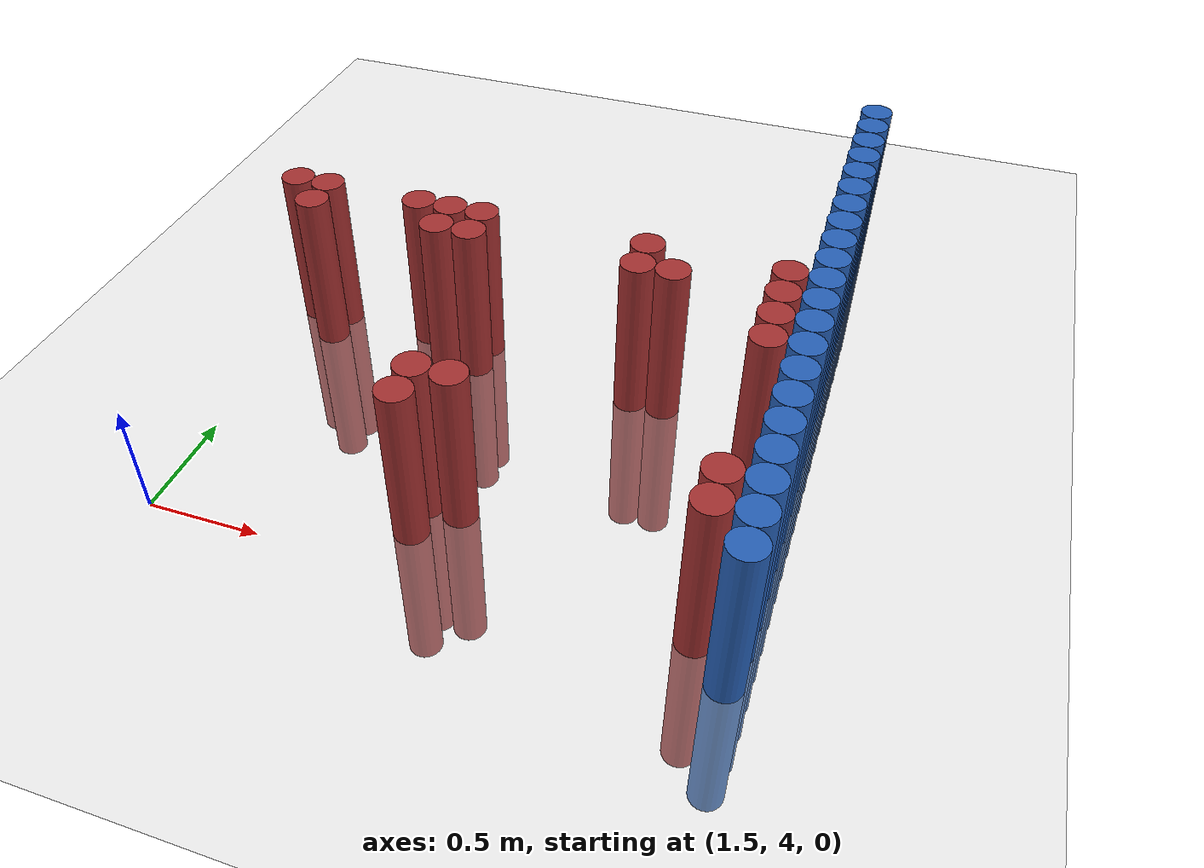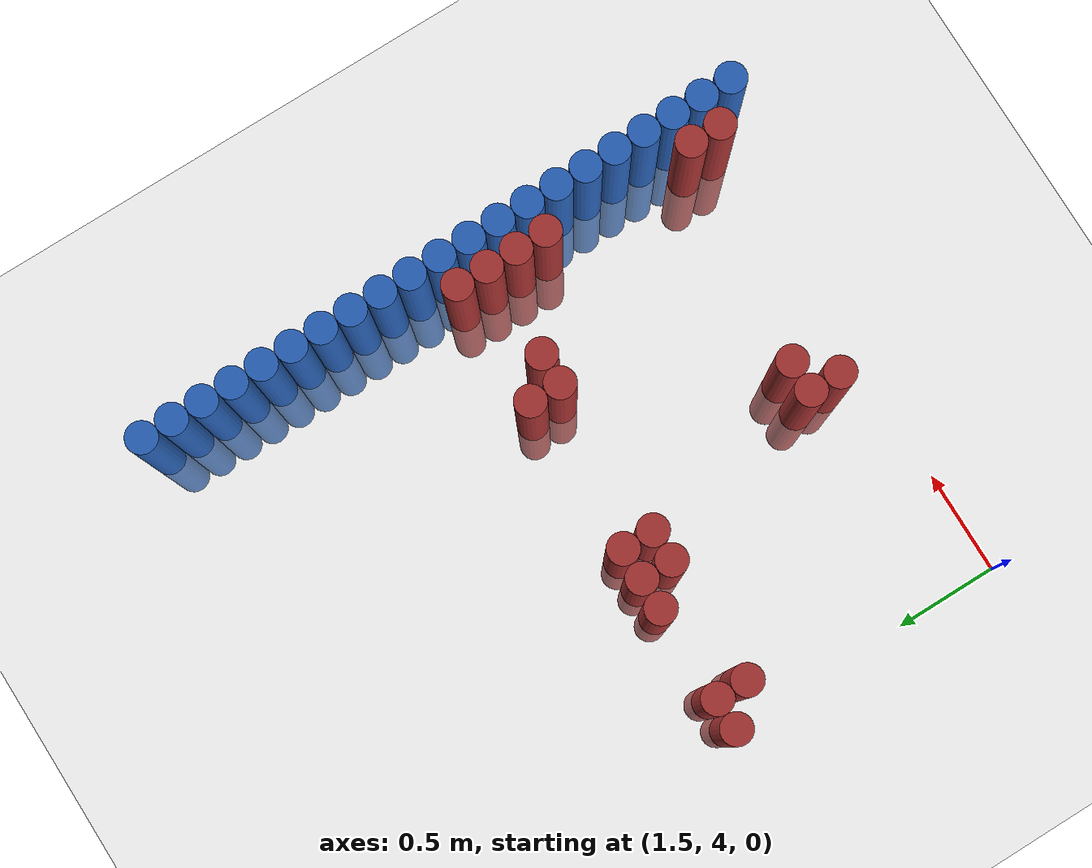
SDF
<sdf version="1.6">
 <world name="default">
  <model name="ground_plane">
   <static>1</static>
   <link name="link">
    <collision name="collision">
     <geometry><plane><normal>0 0 1</normal><size>100 100</size></plane></geometry>
     <surface><friction><ode><mu>100</mu><mu2>50</mu2></ode></friction></surface>
    </collision>
    <visual name="visual">
     <cast_shadows>0</cast_shadows>
     <geometry><plane><normal>0 0 1</normal><size>100 100</size></plane></geometry>
     <material>
      <script><uri>file://media/materials/scripts/gazebo.material</uri><name>Gazebo/Grey</name></script>
     </material>
    </visual>
   </link>
  </model>
  <model name="unit_cylinder_168">
   <static>1</static>
   <pose>3.925000 4.075000 0.000000 0.000000 0.000000 0.000000</pose>
   <link name="link">
    <inertial>
     <mass>1</mass>
     <inertia><ixx>0.145833</ixx><ixy>0</ixy><ixz>0</ixz><iyy>0.145833</iyy><iyz>0</iyz><izz>0.125</izz></inertia>
    </inertial>
    <collision name="collision">
     <geometry><cylinder><radius>0.075000</radius><length>1.5</length></cylinder></geometry>
    </collision>
    <visual name="visual">
     <geometry><cylinder><radius>0.075000</radius><length>1.5</length></cylinder></geometry>
     <material>
      <ambient>0.152000 0.379000 0.720000 1</ambient>
      <diffuse>0.152000 0.379000 0.720000 1</diffuse>
     </material>
     <material>
      <script><name>Gazebo/Grey</name><uri>file://media/materials/scripts/gazebo.material</uri></script>
     </material>
    </visual>
   </link>
  </model>
  <model name="unit_cylinder_170">
   <static>1</static>
   <pose>3.925000 4.225000 0.000000 0.000000 0.000000 0.000000</pose>
   <link name="link">
    <inertial>
     <mass>1</mass>
     <inertia><ixx>0.145833</ixx><ixy>0</ixy><ixz>0</ixz><iyy>0.145833</iyy><iyz>0</iyz><izz>0.125</izz></inertia>
    </inertial>
    <collision name="collision">
     <geometry><cylinder><radius>0.075000</radius><length>1.5</length></cylinder></geometry>
    </collision>
    <visual name="visual">
     <geometry><cylinder><radius>0.075000</radius><length>1.5</length></cylinder></geometry>
     <material>
      <ambient>0.152000 0.379000 0.720000 1</ambient>
      <diffuse>0.152000 0.379000 0.720000 1</diffuse>
     </material>
     <material>
      <script><name>Gazebo/Grey</name><uri>file://media/materials/scripts/gazebo.material</uri></script>
     </material>
    </visual>
   </link>
  </model>
  <model name="unit_cylinder_172">
   <static>1</static>
   <pose>3.925000 4.375000 0.000000 0.000000 0.000000 0.000000</pose>
   <link name="link">
    <inertial>
     <mass>1</mass>
     <inertia><ixx>0.145833</ixx><ixy>0</ixy><ixz>0</ixz><iyy>0.145833</iyy><iyz>0</iyz><izz>0.125</izz></inertia>
    </inertial>
    <collision name="collision">
     <geometry><cylinder><radius>0.075000</radius><length>1.5</length></cylinder></geometry>
    </collision>
    <visual name="visual">
     <geometry><cylinder><radius>0.075000</radius><length>1.5</length></cylinder></geometry>
     <material>
      <ambient>0.152000 0.379000 0.720000 1</ambient>
      <diffuse>0.152000 0.379000 0.720000 1</diffuse>
     </material>
     <material>
      <script><name>Gazebo/Grey</name><uri>file://media/materials/scripts/gazebo.material</uri></script>
     </material>
    </visual>
   </link>
  </model>
  <model name="unit_cylinder_174">
   <static>1</static>
   <pose>3.925000 4.525000 0.000000 0.000000 0.000000 0.000000</pose>
   <link name="link">
    <inertial>
     <mass>1</mass>
     <inertia><ixx>0.145833</ixx><ixy>0</ixy><ixz>0</ixz><iyy>0.145833</iyy><iyz>0</iyz><izz>0.125</izz></inertia>
    </inertial>
    <collision name="collision">
     <geometry><cylinder><radius>0.075000</radius><length>1.5</length></cylinder></geometry>
    </collision>
    <visual name="visual">
     <geometry><cylinder><radius>0.075000</radius><length>1.5</length></cylinder></geometry>
     <material>
      <ambient>0.152000 0.379000 0.720000 1</ambient>
      <diffuse>0.152000 0.379000 0.720000 1</diffuse>
     </material>
     <material>
      <script><name>Gazebo/Grey</name><uri>file://media/materials/scripts/gazebo.material</uri></script>
     </material>
    </visual>
   </link>
  </model>
  <model name="unit_cylinder_176">
   <static>1</static>
   <pose>3.925000 4.675000 0.000000 0.000000 0.000000 0.000000</pose>
   <link name="link">
    <inertial>
     <mass>1</mass>
     <inertia><ixx>0.145833</ixx><ixy>0</ixy><ixz>0</ixz><iyy>0.145833</iyy><iyz>0</iyz><izz>0.125</izz></inertia>
    </inertial>
    <collision name="collision">
     <geometry><cylinder><radius>0.075000</radius><length>1.5</length></cylinder></geometry>
    </collision>
    <visual name="visual">
     <geometry><cylinder><radius>0.075000</radius><length>1.5</length></cylinder></geometry>
     <material>
      <ambient>0.152000 0.379000 0.720000 1</ambient>
      <diffuse>0.152000 0.379000 0.720000 1</diffuse>
     </material>
     <material>
      <script><name>Gazebo/Grey</name><uri>file://media/materials/scripts/gazebo.material</uri></script>
     </material>
    </visual>
   </link>
  </model>
  <model name="unit_cylinder_178">
   <static>1</static>
   <pose>3.925000 4.825000 0.000000 0.000000 0.000000 0.000000</pose>
   <link name="link">
    <inertial>
     <mass>1</mass>
     <inertia><ixx>0.145833</ixx><ixy>0</ixy><ixz>0</ixz><iyy>0.145833</iyy><iyz>0</iyz><izz>0.125</izz></inertia>
    </inertial>
    <collision name="collision">
     <geometry><cylinder><radius>0.075000</radius><length>1.5</length></cylinder></geometry>
    </collision>
    <visual name="visual">
     <geometry><cylinder><radius>0.075000</radius><length>1.5</length></cylinder></geometry>
     <material>
      <ambient>0.152000 0.379000 0.720000 1</ambient>
      <diffuse>0.152000 0.379000 0.720000 1</diffuse>
     </material>
     <material>
      <script><name>Gazebo/Grey</name><uri>file://media/materials/scripts/gazebo.material</uri></script>
     </material>
    </visual>
   </link>
  </model>
  <model name="unit_cylinder_180">
   <static>1</static>
   <pose>3.925000 4.975000 0.000000 0.000000 0.000000 0.000000</pose>
   <link name="link">
    <inertial>
     <mass>1</mass>
     <inertia><ixx>0.145833</ixx><ixy>0</ixy><ixz>0</ixz><iyy>0.145833</iyy><iyz>0</iyz><izz>0.125</izz></inertia>
    </inertial>
    <collision name="collision">
     <geometry><cylinder><radius>0.075000</radius><length>1.5</length></cylinder></geometry>
    </collision>
    <visual name="visual">
     <geometry><cylinder><radius>0.075000</radius><length>1.5</length></cylinder></geometry>
     <material>
      <ambient>0.152000 0.379000 0.720000 1</ambient>
      <diffuse>0.152000 0.379000 0.720000 1</diffuse>
     </material>
     <material>
      <script><name>Gazebo/Grey</name><uri>file://media/materials/scripts/gazebo.material</uri></script>
     </material>
    </visual>
   </link>
  </model>
  <model name="unit_cylinder_182">
   <static>1</static>
   <pose>3.925000 5.125000 0.000000 0.000000 0.000000 0.000000</pose>
   <link name="link">
    <inertial>
     <mass>1</mass>
     <inertia><ixx>0.145833</ixx><ixy>0</ixy><ixz>0</ixz><iyy>0.145833</iyy><iyz>0</iyz><izz>0.125</izz></inertia>
    </inertial>
    <collision name="collision">
     <geometry><cylinder><radius>0.075000</radius><length>1.5</length></cylinder></geometry>
    </collision>
    <visual name="visual">
     <geometry><cylinder><radius>0.075000</radius><length>1.5</length></cylinder></geometry>
     <material>
      <ambient>0.152000 0.379000 0.720000 1</ambient>
      <diffuse>0.152000 0.379000 0.720000 1</diffuse>
     </material>
     <material>
      <script><name>Gazebo/Grey</name><uri>file://media/materials/scripts/gazebo.material</uri></script>
     </material>
    </visual>
   </link>
  </model>
  <model name="unit_cylinder_184">
   <static>1</static>
   <pose>3.925000 5.275000 0.000000 0.000000 0.000000 0.000000</pose>
   <link name="link">
    <inertial>
     <mass>1</mass>
     <inertia><ixx>0.145833</ixx><ixy>0</ixy><ixz>0</ixz><iyy>0.145833</iyy><iyz>0</iyz><izz>0.125</izz></inertia>
    </inertial>
    <collision name="collision">
     <geometry><cylinder><radius>0.075000</radius><length>1.5</length></cylinder></geometry>
    </collision>
    <visual name="visual">
     <geometry><cylinder><radius>0.075000</radius><length>1.5</length></cylinder></geometry>
     <material>
      <ambient>0.152000 0.379000 0.720000 1</ambient>
      <diffuse>0.152000 0.379000 0.720000 1</diffuse>
     </material>
     <material>
      <script><name>Gazebo/Grey</name><uri>file://media/materials/scripts/gazebo.material</uri></script>
     </material>
    </visual>
   </link>
  </model>
  <model name="unit_cylinder_186">
   <static>1</static>
   <pose>3.925000 5.425000 0.000000 0.000000 0.000000 0.000000</pose>
   <link name="link">
    <inertial>
     <mass>1</mass>
     <inertia><ixx>0.145833</ixx><ixy>0</ixy><ixz>0</ixz><iyy>0.145833</iyy><iyz>0</iyz><izz>0.125</izz></inertia>
    </inertial>
    <collision name="collision">
     <geometry><cylinder><radius>0.075000</radius><length>1.5</length></cylinder></geometry>
    </collision>
    <visual name="visual">
     <geometry><cylinder><radius>0.075000</radius><length>1.5</length></cylinder></geometry>
     <material>
      <ambient>0.152000 0.379000 0.720000 1</ambient>
      <diffuse>0.152000 0.379000 0.720000 1</diffuse>
     </material>
     <material>
      <script><name>Gazebo/Grey</name><uri>file://media/materials/scripts/gazebo.material</uri></script>
     </material>
    </visual>
   </link>
  </model>
  <model name="unit_cylinder_188">
   <static>1</static>
   <pose>3.925000 5.575000 0.000000 0.000000 0.000000 0.000000</pose>
   <link name="link">
    <inertial>
     <mass>1</mass>
     <inertia><ixx>0.145833</ixx><ixy>0</ixy><ixz>0</ixz><iyy>0.145833</iyy><iyz>0</iyz><izz>0.125</izz></inertia>
    </inertial>
    <collision name="collision">
     <geometry><cylinder><radius>0.075000</radius><length>1.5</length></cylinder></geometry>
    </collision>
    <visual name="visual">
     <geometry><cylinder><radius>0.075000</radius><length>1.5</length></cylinder></geometry>
     <material>
      <ambient>0.152000 0.379000 0.720000 1</ambient>
      <diffuse>0.152000 0.379000 0.720000 1</diffuse>
     </material>
     <material>
      <script><name>Gazebo/Grey</name><uri>file://media/materials/scripts/gazebo.material</uri></script>
     </material>
    </visual>
   </link>
  </model>
  <model name="unit_cylinder_190">
   <static>1</static>
   <pose>3.925000 5.725000 0.000000 0.000000 0.000000 0.000000</pose>
   <link name="link">
    <inertial>
     <mass>1</mass>
     <inertia><ixx>0.145833</ixx><ixy>0</ixy><ixz>0</ixz><iyy>0.145833</iyy><iyz>0</iyz><izz>0.125</izz></inertia>
    </inertial>
    <collision name="collision">
     <geometry><cylinder><radius>0.075000</radius><length>1.5</length></cylinder></geometry>
    </collision>
    <visual name="visual">
     <geometry><cylinder><radius>0.075000</radius><length>1.5</length></cylinder></geometry>
     <material>
      <ambient>0.152000 0.379000 0.720000 1</ambient>
      <diffuse>0.152000 0.379000 0.720000 1</diffuse>
     </material>
     <material>
      <script><name>Gazebo/Grey</name><uri>file://media/materials/scripts/gazebo.material</uri></script>
     </material>
    </visual>
   </link>
  </model>
  <model name="unit_cylinder_192">
   <static>1</static>
   <pose>3.925000 5.875000 0.000000 0.000000 0.000000 0.000000</pose>
   <link name="link">
    <inertial>
     <mass>1</mass>
     <inertia><ixx>0.145833</ixx><ixy>0</ixy><ixz>0</ixz><iyy>0.145833</iyy><iyz>0</iyz><izz>0.125</izz></inertia>
    </inertial>
    <collision name="collision">
     <geometry><cylinder><radius>0.075000</radius><length>1.5</length></cylinder></geometry>
    </collision>
    <visual name="visual">
     <geometry><cylinder><radius>0.075000</radius><length>1.5</length></cylinder></geometry>
     <material>
      <ambient>0.152000 0.379000 0.720000 1</ambient>
      <diffuse>0.152000 0.379000 0.720000 1</diffuse>
     </material>
     <material>
      <script><name>Gazebo/Grey</name><uri>file://media/materials/scripts/gazebo.material</uri></script>
     </material>
    </visual>
   </link>
  </model>
  <model name="unit_cylinder_194">
   <static>1</static>
   <pose>3.925000 6.025000 0.000000 0.000000 0.000000 0.000000</pose>
   <link name="link">
    <inertial>
     <mass>1</mass>
     <inertia><ixx>0.145833</ixx><ixy>0</ixy><ixz>0</ixz><iyy>0.145833</iyy><iyz>0</iyz><izz>0.125</izz></inertia>
    </inertial>
    <collision name="collision">
     <geometry><cylinder><radius>0.075000</radius><length>1.5</length></cylinder></geometry>
    </collision>
    <visual name="visual">
     <geometry><cylinder><radius>0.075000</radius><length>1.5</length></cylinder></geometry>
     <material>
      <ambient>0.152000 0.379000 0.720000 1</ambient>
      <diffuse>0.152000 0.379000 0.720000 1</diffuse>
     </material>
     <material>
      <script><name>Gazebo/Grey</name><uri>file://media/materials/scripts/gazebo.material</uri></script>
     </material>
    </visual>
   </link>
  </model>
  <model name="unit_cylinder_196">
   <static>1</static>
   <pose>3.925000 6.175000 0.000000 0.000000 0.000000 0.000000</pose>
   <link name="link">
    <inertial>
     <mass>1</mass>
     <inertia><ixx>0.145833</ixx><ixy>0</ixy><ixz>0</ixz><iyy>0.145833</iyy><iyz>0</iyz><izz>0.125</izz></inertia>
    </inertial>
    <collision name="collision">
     <geometry><cylinder><radius>0.075000</radius><length>1.5</length></cylinder></geometry>
    </collision>
    <visual name="visual">
     <geometry><cylinder><radius>0.075000</radius><length>1.5</length></cylinder></geometry>
     <material>
      <ambient>0.152000 0.379000 0.720000 1</ambient>
      <diffuse>0.152000 0.379000 0.720000 1</diffuse>
     </material>
     <material>
      <script><name>Gazebo/Grey</name><uri>file://media/materials/scripts/gazebo.material</uri></script>
     </material>
    </visual>
   </link>
  </model>
  <model name="unit_cylinder_198">
   <static>1</static>
   <pose>3.925000 6.325000 0.000000 0.000000 0.000000 0.000000</pose>
   <link name="link">
    <inertial>
     <mass>1</mass>
     <inertia><ixx>0.145833</ixx><ixy>0</ixy><ixz>0</ixz><iyy>0.145833</iyy><iyz>0</iyz><izz>0.125</izz></inertia>
    </inertial>
    <collision name="collision">
     <geometry><cylinder><radius>0.075000</radius><length>1.5</length></cylinder></geometry>
    </collision>
    <visual name="visual">
     <geometry><cylinder><radius>0.075000</radius><length>1.5</length></cylinder></geometry>
     <material>
      <ambient>0.152000 0.379000 0.720000 1</ambient>
      <diffuse>0.152000 0.379000 0.720000 1</diffuse>
     </material>
     <material>
      <script><name>Gazebo/Grey</name><uri>file://media/materials/scripts/gazebo.material</uri></script>
     </material>
    </visual>
   </link>
  </model>
  <model name="unit_cylinder_200">
   <static>1</static>
   <pose>3.925000 6.475000 0.000000 0.000000 0.000000 0.000000</pose>
   <link name="link">
    <inertial>
     <mass>1</mass>
     <inertia><ixx>0.145833</ixx><ixy>0</ixy><ixz>0</ixz><iyy>0.145833</iyy><iyz>0</iyz><izz>0.125</izz></inertia>
    </inertial>
    <collision name="collision">
     <geometry><cylinder><radius>0.075000</radius><length>1.5</length></cylinder></geometry>
    </collision>
    <visual name="visual">
     <geometry><cylinder><radius>0.075000</radius><length>1.5</length></cylinder></geometry>
     <material>
      <ambient>0.152000 0.379000 0.720000 1</ambient>
      <diffuse>0.152000 0.379000 0.720000 1</diffuse>
     </material>
     <material>
      <script><name>Gazebo/Grey</name><uri>file://media/materials/scripts/gazebo.material</uri></script>
     </material>
    </visual>
   </link>
  </model>
  <model name="unit_cylinder_202">
   <static>1</static>
   <pose>3.925000 6.625000 0.000000 0.000000 0.000000 0.000000</pose>
   <link name="link">
    <inertial>
     <mass>1</mass>
     <inertia><ixx>0.145833</ixx><ixy>0</ixy><ixz>0</ixz><iyy>0.145833</iyy><iyz>0</iyz><izz>0.125</izz></inertia>
    </inertial>
    <collision name="collision">
     <geometry><cylinder><radius>0.075000</radius><length>1.5</length></cylinder></geometry>
    </collision>
    <visual name="visual">
     <geometry><cylinder><radius>0.075000</radius><length>1.5</length></cylinder></geometry>
     <material>
      <ambient>0.152000 0.379000 0.720000 1</ambient>
      <diffuse>0.152000 0.379000 0.720000 1</diffuse>
     </material>
     <material>
      <script><name>Gazebo/Grey</name><uri>file://media/materials/scripts/gazebo.material</uri></script>
     </material>
    </visual>
   </link>
  </model>
  <model name="unit_cylinder_204">
   <static>1</static>
   <pose>3.925000 6.775000 0.000000 0.000000 0.000000 0.000000</pose>
   <link name="link">
    <inertial>
     <mass>1</mass>
     <inertia><ixx>0.145833</ixx><ixy>0</ixy><ixz>0</ixz><iyy>0.145833</iyy><iyz>0</iyz><izz>0.125</izz></inertia>
    </inertial>
    <collision name="collision">
     <geometry><cylinder><radius>0.075000</radius><length>1.5</length></cylinder></geometry>
    </collision>
    <visual name="visual">
     <geometry><cylinder><radius>0.075000</radius><length>1.5</length></cylinder></geometry>
     <material>
      <ambient>0.152000 0.379000 0.720000 1</ambient>
      <diffuse>0.152000 0.379000 0.720000 1</diffuse>
     </material>
     <material>
      <script><name>Gazebo/Grey</name><uri>file://media/materials/scripts/gazebo.material</uri></script>
     </material>
    </visual>
   </link>
  </model>
  <model name="unit_cylinder_206">
   <static>1</static>
   <pose>3.925000 6.925000 0.000000 0.000000 0.000000 0.000000</pose>
   <link name="link">
    <inertial>
     <mass>1</mass>
     <inertia><ixx>0.145833</ixx><ixy>0</ixy><ixz>0</ixz><iyy>0.145833</iyy><iyz>0</iyz><izz>0.125</izz></inertia>
    </inertial>
    <collision name="collision">
     <geometry><cylinder><radius>0.075000</radius><length>1.5</length></cylinder></geometry>
    </collision>
    <visual name="visual">
     <geometry><cylinder><radius>0.075000</radius><length>1.5</length></cylinder></geometry>
     <material>
      <ambient>0.152000 0.379000 0.720000 1</ambient>
      <diffuse>0.152000 0.379000 0.720000 1</diffuse>
     </material>
     <material>
      <script><name>Gazebo/Grey</name><uri>file://media/materials/scripts/gazebo.material</uri></script>
     </material>
    </visual>
   </link>
  </model>
  <model name="unit_cylinder_479">
   <static>1</static>
   <pose>1.525000 5.425000 0.000000 0.000000 0.000000 0.000000</pose>
   <link name="link">
    <inertial>
     <mass>1</mass>
     <inertia><ixx>0.145833</ixx><ixy>0</ixy><ixz>0</ixz><iyy>0.145833</iyy><iyz>0</iyz><izz>0.125</izz></inertia>
    </inertial>
    <collision name="collision">
     <geometry><cylinder><radius>0.075000</radius><length>1.5</length></cylinder></geometry>
    </collision>
    <visual name="visual">
     <geometry><cylinder><radius>0.075000</radius><length>1.5</length></cylinder></geometry>
     <material>
      <ambient>0.648000 0.192000 0.192000 1</ambient>
      <diffuse>0.648000 0.192000 0.192000 1</diffuse>
     </material>
     <material>
      <script><name>Gazebo/Grey</name><uri>file://media/materials/scripts/gazebo.material</uri></script>
     </material>
    </visual>
   </link>
  </model>
  <model name="unit_cylinder_480">
   <static>1</static>
   <pose>1.675000 5.275000 0.000000 0.000000 0.000000 0.000000</pose>
   <link name="link">
    <inertial>
     <mass>1</mass>
     <inertia><ixx>0.145833</ixx><ixy>0</ixy><ixz>0</ixz><iyy>0.145833</iyy><iyz>0</iyz><izz>0.125</izz></inertia>
    </inertial>
    <collision name="collision">
     <geometry><cylinder><radius>0.075000</radius><length>1.5</length></cylinder></geometry>
    </collision>
    <visual name="visual">
     <geometry><cylinder><radius>0.075000</radius><length>1.5</length></cylinder></geometry>
     <material>
      <ambient>0.648000 0.192000 0.192000 1</ambient>
      <diffuse>0.648000 0.192000 0.192000 1</diffuse>
     </material>
     <material>
      <script><name>Gazebo/Grey</name><uri>file://media/materials/scripts/gazebo.material</uri></script>
     </material>
    </visual>
   </link>
  </model>
  <model name="unit_cylinder_481">
   <static>1</static>
   <pose>1.675000 5.425000 0.000000 0.000000 0.000000 0.000000</pose>
   <link name="link">
    <inertial>
     <mass>1</mass>
     <inertia><ixx>0.145833</ixx><ixy>0</ixy><ixz>0</ixz><iyy>0.145833</iyy><iyz>0</iyz><izz>0.125</izz></inertia>
    </inertial>
    <collision name="collision">
     <geometry><cylinder><radius>0.075000</radius><length>1.5</length></cylinder></geometry>
    </collision>
    <visual name="visual">
     <geometry><cylinder><radius>0.075000</radius><length>1.5</length></cylinder></geometry>
     <material>
      <ambient>0.648000 0.192000 0.192000 1</ambient>
      <diffuse>0.648000 0.192000 0.192000 1</diffuse>
     </material>
     <material>
      <script><name>Gazebo/Grey</name><uri>file://media/materials/scripts/gazebo.material</uri></script>
     </material>
    </visual>
   </link>
  </model>
  <model name="unit_cylinder_485">
   <static>1</static>
   <pose>2.125000 5.425000 0.000000 0.000000 0.000000 0.000000</pose>
   <link name="link">
    <inertial>
     <mass>1</mass>
     <inertia><ixx>0.145833</ixx><ixy>0</ixy><ixz>0</ixz><iyy>0.145833</iyy><iyz>0</iyz><izz>0.125</izz></inertia>
    </inertial>
    <collision name="collision">
     <geometry><cylinder><radius>0.075000</radius><length>1.5</length></cylinder></geometry>
    </collision>
    <visual name="visual">
     <geometry><cylinder><radius>0.075000</radius><length>1.5</length></cylinder></geometry>
     <material>
      <ambient>0.648000 0.192000 0.192000 1</ambient>
      <diffuse>0.648000 0.192000 0.192000 1</diffuse>
     </material>
     <material>
      <script><name>Gazebo/Grey</name><uri>file://media/materials/scripts/gazebo.material</uri></script>
     </material>
    </visual>
   </link>
  </model>
  <model name="unit_cylinder_486">
   <static>1</static>
   <pose>2.275000 5.275000 0.000000 0.000000 0.000000 0.000000</pose>
   <link name="link">
    <inertial>
     <mass>1</mass>
     <inertia><ixx>0.145833</ixx><ixy>0</ixy><ixz>0</ixz><iyy>0.145833</iyy><iyz>0</iyz><izz>0.125</izz></inertia>
    </inertial>
    <collision name="collision">
     <geometry><cylinder><radius>0.075000</radius><length>1.5</length></cylinder></geometry>
    </collision>
    <visual name="visual">
     <geometry><cylinder><radius>0.075000</radius><length>1.5</length></cylinder></geometry>
     <material>
      <ambient>0.648000 0.192000 0.192000 1</ambient>
      <diffuse>0.648000 0.192000 0.192000 1</diffuse>
     </material>
     <material>
      <script><name>Gazebo/Grey</name><uri>file://media/materials/scripts/gazebo.material</uri></script>
     </material>
    </visual>
   </link>
  </model>
  <model name="unit_cylinder_487">
   <static>1</static>
   <pose>2.275000 5.425000 0.000000 0.000000 0.000000 0.000000</pose>
   <link name="link">
    <inertial>
     <mass>1</mass>
     <inertia><ixx>0.145833</ixx><ixy>0</ixy><ixz>0</ixz><iyy>0.145833</iyy><iyz>0</iyz><izz>0.125</izz></inertia>
    </inertial>
    <collision name="collision">
     <geometry><cylinder><radius>0.075000</radius><length>1.5</length></cylinder></geometry>
    </collision>
    <visual name="visual">
     <geometry><cylinder><radius>0.075000</radius><length>1.5</length></cylinder></geometry>
     <material>
      <ambient>0.648000 0.192000 0.192000 1</ambient>
      <diffuse>0.648000 0.192000 0.192000 1</diffuse>
     </material>
     <material>
      <script><name>Gazebo/Grey</name><uri>file://media/materials/scripts/gazebo.material</uri></script>
     </material>
    </visual>
   </link>
  </model>
  <model name="unit_cylinder_488">
   <static>1</static>
   <pose>2.425000 5.275000 0.000000 0.000000 0.000000 0.000000</pose>
   <link name="link">
    <inertial>
     <mass>1</mass>
     <inertia><ixx>0.145833</ixx><ixy>0</ixy><ixz>0</ixz><iyy>0.145833</iyy><iyz>0</iyz><izz>0.125</izz></inertia>
    </inertial>
    <collision name="collision">
     <geometry><cylinder><radius>0.075000</radius><length>1.5</length></cylinder></geometry>
    </collision>
    <visual name="visual">
     <geometry><cylinder><radius>0.075000</radius><length>1.5</length></cylinder></geometry>
     <material>
      <ambient>0.648000 0.192000 0.192000 1</ambient>
      <diffuse>0.648000 0.192000 0.192000 1</diffuse>
     </material>
     <material>
      <script><name>Gazebo/Grey</name><uri>file://media/materials/scripts/gazebo.material</uri></script>
     </material>
    </visual>
   </link>
  </model>
  <model name="unit_cylinder_489">
   <static>1</static>
   <pose>2.425000 5.425000 0.000000 0.000000 0.000000 0.000000</pose>
   <link name="link">
    <inertial>
     <mass>1</mass>
     <inertia><ixx>0.145833</ixx><ixy>0</ixy><ixz>0</ixz><iyy>0.145833</iyy><iyz>0</iyz><izz>0.125</izz></inertia>
    </inertial>
    <collision name="collision">
     <geometry><cylinder><radius>0.075000</radius><length>1.5</length></cylinder></geometry>
    </collision>
    <visual name="visual">
     <geometry><cylinder><radius>0.075000</radius><length>1.5</length></cylinder></geometry>
     <material>
      <ambient>0.648000 0.192000 0.192000 1</ambient>
      <diffuse>0.648000 0.192000 0.192000 1</diffuse>
     </material>
     <material>
      <script><name>Gazebo/Grey</name><uri>file://media/materials/scripts/gazebo.material</uri></script>
     </material>
    </visual>
   </link>
  </model>
  <model name="unit_cylinder_492">
   <static>1</static>
   <pose>2.575000 4.225000 0.000000 0.000000 0.000000 0.000000</pose>
   <link name="link">
    <inertial>
     <mass>1</mass>
     <inertia><ixx>0.145833</ixx><ixy>0</ixy><ixz>0</ixz><iyy>0.145833</iyy><iyz>0</iyz><izz>0.125</izz></inertia>
    </inertial>
    <collision name="collision">
     <geometry><cylinder><radius>0.075000</radius><length>1.5</length></cylinder></geometry>
    </collision>
    <visual name="visual">
     <geometry><cylinder><radius>0.075000</radius><length>1.5</length></cylinder></geometry>
     <material>
      <ambient>0.648000 0.192000 0.192000 1</ambient>
      <diffuse>0.648000 0.192000 0.192000 1</diffuse>
     </material>
     <material>
      <script><name>Gazebo/Grey</name><uri>file://media/materials/scripts/gazebo.material</uri></script>
     </material>
    </visual>
   </link>
  </model>
  <model name="unit_cylinder_493">
   <static>1</static>
   <pose>2.575000 4.375000 0.000000 0.000000 0.000000 0.000000</pose>
   <link name="link">
    <inertial>
     <mass>1</mass>
     <inertia><ixx>0.145833</ixx><ixy>0</ixy><ixz>0</ixz><iyy>0.145833</iyy><iyz>0</iyz><izz>0.125</izz></inertia>
    </inertial>
    <collision name="collision">
     <geometry><cylinder><radius>0.075000</radius><length>1.5</length></cylinder></geometry>
    </collision>
    <visual name="visual">
     <geometry><cylinder><radius>0.075000</radius><length>1.5</length></cylinder></geometry>
     <material>
      <ambient>0.648000 0.192000 0.192000 1</ambient>
      <diffuse>0.648000 0.192000 0.192000 1</diffuse>
     </material>
     <material>
      <script><name>Gazebo/Grey</name><uri>file://media/materials/scripts/gazebo.material</uri></script>
     </material>
    </visual>
   </link>
  </model>
  <model name="unit_cylinder_500">
   <static>1</static>
   <pose>2.725000 4.375000 0.000000 0.000000 0.000000 0.000000</pose>
   <link name="link">
    <inertial>
     <mass>1</mass>
     <inertia><ixx>0.145833</ixx><ixy>0</ixy><ixz>0</ixz><iyy>0.145833</iyy><iyz>0</iyz><izz>0.125</izz></inertia>
    </inertial>
    <collision name="collision">
     <geometry><cylinder><radius>0.075000</radius><length>1.5</length></cylinder></geometry>
    </collision>
    <visual name="visual">
     <geometry><cylinder><radius>0.075000</radius><length>1.5</length></cylinder></geometry>
     <material>
      <ambient>0.648000 0.192000 0.192000 1</ambient>
      <diffuse>0.648000 0.192000 0.192000 1</diffuse>
     </material>
     <material>
      <script><name>Gazebo/Grey</name><uri>file://media/materials/scripts/gazebo.material</uri></script>
     </material>
    </visual>
   </link>
  </model>
  <model name="unit_cylinder_508">
   <static>1</static>
   <pose>3.175000 5.275000 0.000000 0.000000 0.000000 0.000000</pose>
   <link name="link">
    <inertial>
     <mass>1</mass>
     <inertia><ixx>0.145833</ixx><ixy>0</ixy><ixz>0</ixz><iyy>0.145833</iyy><iyz>0</iyz><izz>0.125</izz></inertia>
    </inertial>
    <collision name="collision">
     <geometry><cylinder><radius>0.075000</radius><length>1.5</length></cylinder></geometry>
    </collision>
    <visual name="visual">
     <geometry><cylinder><radius>0.075000</radius><length>1.5</length></cylinder></geometry>
     <material>
      <ambient>0.648000 0.192000 0.192000 1</ambient>
      <diffuse>0.648000 0.192000 0.192000 1</diffuse>
     </material>
     <material>
      <script><name>Gazebo/Grey</name><uri>file://media/materials/scripts/gazebo.material</uri></script>
     </material>
    </visual>
   </link>
  </model>
  <model name="unit_cylinder_509">
   <static>1</static>
   <pose>3.175000 5.425000 0.000000 0.000000 0.000000 0.000000</pose>
   <link name="link">
    <inertial>
     <mass>1</mass>
     <inertia><ixx>0.145833</ixx><ixy>0</ixy><ixz>0</ixz><iyy>0.145833</iyy><iyz>0</iyz><izz>0.125</izz></inertia>
    </inertial>
    <collision name="collision">
     <geometry><cylinder><radius>0.075000</radius><length>1.5</length></cylinder></geometry>
    </collision>
    <visual name="visual">
     <geometry><cylinder><radius>0.075000</radius><length>1.5</length></cylinder></geometry>
     <material>
      <ambient>0.648000 0.192000 0.192000 1</ambient>
      <diffuse>0.648000 0.192000 0.192000 1</diffuse>
     </material>
     <material>
      <script><name>Gazebo/Grey</name><uri>file://media/materials/scripts/gazebo.material</uri></script>
     </material>
    </visual>
   </link>
  </model>
  <model name="unit_cylinder_514">
   <static>1</static>
   <pose>3.325000 5.275000 0.000000 0.000000 0.000000 0.000000</pose>
   <link name="link">
    <inertial>
     <mass>1</mass>
     <inertia><ixx>0.145833</ixx><ixy>0</ixy><ixz>0</ixz><iyy>0.145833</iyy><iyz>0</iyz><izz>0.125</izz></inertia>
    </inertial>
    <collision name="collision">
     <geometry><cylinder><radius>0.075000</radius><length>1.5</length></cylinder></geometry>
    </collision>
    <visual name="visual">
     <geometry><cylinder><radius>0.075000</radius><length>1.5</length></cylinder></geometry>
     <material>
      <ambient>0.648000 0.192000 0.192000 1</ambient>
      <diffuse>0.648000 0.192000 0.192000 1</diffuse>
     </material>
     <material>
      <script><name>Gazebo/Grey</name><uri>file://media/materials/scripts/gazebo.material</uri></script>
     </material>
    </visual>
   </link>
  </model>
  <model name="unit_cylinder_548">
   <static>1</static>
   <pose>3.775000 4.075000 0.000000 0.000000 0.000000 0.000000</pose>
   <link name="link">
    <inertial>
     <mass>1</mass>
     <inertia><ixx>0.145833</ixx><ixy>0</ixy><ixz>0</ixz><iyy>0.145833</iyy><iyz>0</iyz><izz>0.125</izz></inertia>
    </inertial>
    <collision name="collision">
     <geometry><cylinder><radius>0.075000</radius><length>1.5</length></cylinder></geometry>
    </collision>
    <visual name="visual">
     <geometry><cylinder><radius>0.075000</radius><length>1.5</length></cylinder></geometry>
     <material>
      <ambient>0.648000 0.192000 0.192000 1</ambient>
      <diffuse>0.648000 0.192000 0.192000 1</diffuse>
     </material>
     <material>
      <script><name>Gazebo/Grey</name><uri>file://media/materials/scripts/gazebo.material</uri></script>
     </material>
    </visual>
   </link>
  </model>
  <model name="unit_cylinder_549">
   <static>1</static>
   <pose>3.775000 4.225000 0.000000 0.000000 0.000000 0.000000</pose>
   <link name="link">
    <inertial>
     <mass>1</mass>
     <inertia><ixx>0.145833</ixx><ixy>0</ixy><ixz>0</ixz><iyy>0.145833</iyy><iyz>0</iyz><izz>0.125</izz></inertia>
    </inertial>
    <collision name="collision">
     <geometry><cylinder><radius>0.075000</radius><length>1.5</length></cylinder></geometry>
    </collision>
    <visual name="visual">
     <geometry><cylinder><radius>0.075000</radius><length>1.5</length></cylinder></geometry>
     <material>
      <ambient>0.648000 0.192000 0.192000 1</ambient>
      <diffuse>0.648000 0.192000 0.192000 1</diffuse>
     </material>
     <material>
      <script><name>Gazebo/Grey</name><uri>file://media/materials/scripts/gazebo.material</uri></script>
     </material>
    </visual>
   </link>
  </model>
  <model name="unit_cylinder_550">
   <static>1</static>
   <pose>3.775000 4.975000 0.000000 0.000000 0.000000 0.000000</pose>
   <link name="link">
    <inertial>
     <mass>1</mass>
     <inertia><ixx>0.145833</ixx><ixy>0</ixy><ixz>0</ixz><iyy>0.145833</iyy><iyz>0</iyz><izz>0.125</izz></inertia>
    </inertial>
    <collision name="collision">
     <geometry><cylinder><radius>0.075000</radius><length>1.5</length></cylinder></geometry>
    </collision>
    <visual name="visual">
     <geometry><cylinder><radius>0.075000</radius><length>1.5</length></cylinder></geometry>
     <material>
      <ambient>0.648000 0.192000 0.192000 1</ambient>
      <diffuse>0.648000 0.192000 0.192000 1</diffuse>
     </material>
     <material>
      <script><name>Gazebo/Grey</name><uri>file://media/materials/scripts/gazebo.material</uri></script>
     </material>
    </visual>
   </link>
  </model>
  <model name="unit_cylinder_551">
   <static>1</static>
   <pose>3.775000 5.125000 0.000000 0.000000 0.000000 0.000000</pose>
   <link name="link">
    <inertial>
     <mass>1</mass>
     <inertia><ixx>0.145833</ixx><ixy>0</ixy><ixz>0</ixz><iyy>0.145833</iyy><iyz>0</iyz><izz>0.125</izz></inertia>
    </inertial>
    <collision name="collision">
     <geometry><cylinder><radius>0.075000</radius><length>1.5</length></cylinder></geometry>
    </collision>
    <visual name="visual">
     <geometry><cylinder><radius>0.075000</radius><length>1.5</length></cylinder></geometry>
     <material>
      <ambient>0.648000 0.192000 0.192000 1</ambient>
      <diffuse>0.648000 0.192000 0.192000 1</diffuse>
     </material>
     <material>
      <script><name>Gazebo/Grey</name><uri>file://media/materials/scripts/gazebo.material</uri></script>
     </material>
    </visual>
   </link>
  </model>
  <model name="unit_cylinder_552">
   <static>1</static>
   <pose>3.775000 5.275000 0.000000 0.000000 0.000000 0.000000</pose>
   <link name="link">
    <inertial>
     <mass>1</mass>
     <inertia><ixx>0.145833</ixx><ixy>0</ixy><ixz>0</ixz><iyy>0.145833</iyy><iyz>0</iyz><izz>0.125</izz></inertia>
    </inertial>
    <collision name="collision">
     <geometry><cylinder><radius>0.075000</radius><length>1.5</length></cylinder></geometry>
    </collision>
    <visual name="visual">
     <geometry><cylinder><radius>0.075000</radius><length>1.5</length></cylinder></geometry>
     <material>
      <ambient>0.648000 0.192000 0.192000 1</ambient>
      <diffuse>0.648000 0.192000 0.192000 1</diffuse>
     </material>
     <material>
      <script><name>Gazebo/Grey</name><uri>file://media/materials/scripts/gazebo.material</uri></script>
     </material>
    </visual>
   </link>
  </model>
  <model name="unit_cylinder_553">
   <static>1</static>
   <pose>3.775000 5.425000 0.000000 0.000000 0.000000 0.000000</pose>
   <link name="link">
    <inertial>
     <mass>1</mass>
     <inertia><ixx>0.145833</ixx><ixy>0</ixy><ixz>0</ixz><iyy>0.145833</iyy><iyz>0</iyz><izz>0.125</izz></inertia>
    </inertial>
    <collision name="collision">
     <geometry><cylinder><radius>0.075000</radius><length>1.5</length></cylinder></geometry>
    </collision>
    <visual name="visual">
     <geometry><cylinder><radius>0.075000</radius><length>1.5</length></cylinder></geometry>
     <material>
      <ambient>0.648000 0.192000 0.192000 1</ambient>
      <diffuse>0.648000 0.192000 0.192000 1</diffuse>
     </material>
     <material>
      <script><name>Gazebo/Grey</name><uri>file://media/materials/scripts/gazebo.material</uri></script>
     </material>
    </visual>
   </link>
  </model>
  <model name="unit_cylinder_593">
   <static>1</static>
   <pose>3.925000 3.925000 0.000000 0.000000 0.000000 0.000000</pose>
   <link name="link">
    <inertial>
     <mass>1</mass>
     <inertia><ixx>0.145833</ixx><ixy>0</ixy><ixz>0</ixz><iyy>0.145833</iyy><iyz>0</iyz><izz>0.125</izz></inertia>
    </inertial>
    <collision name="collision">
     <geometry><cylinder><radius>0.075000</radius><length>1.5</length></cylinder></geometry>
    </collision>
    <visual name="visual">
     <geometry><cylinder><radius>0.075000</radius><length>1.5</length></cylinder></geometry>
     <material>
      <ambient>0.152000 0.379000 0.720000 1</ambient>
      <diffuse>0.152000 0.379000 0.720000 1</diffuse>
     </material>
     <material>
      <script><name>Gazebo/Grey</name><uri>file://media/materials/scripts/gazebo.material</uri></script>
     </material>
    </visual>
   </link>
  </model>
  <model name="unit_cylinder_594">
   <static>1</static>
   <pose>3.925000 4.075000 0.000000 0.000000 0.000000 0.000000</pose>
   <link name="link">
    <inertial>
     <mass>1</mass>
     <inertia><ixx>0.145833</ixx><ixy>0</ixy><ixz>0</ixz><iyy>0.145833</iyy><iyz>0</iyz><izz>0.125</izz></inertia>
    </inertial>
    <collision name="collision">
     <geometry><cylinder><radius>0.075000</radius><length>1.5</length></cylinder></geometry>
    </collision>
    <visual name="visual">
     <geometry><cylinder><radius>0.075000</radius><length>1.5</length></cylinder></geometry>
     <material>
      <ambient>0.152000 0.379000 0.720000 1</ambient>
      <diffuse>0.152000 0.379000 0.720000 1</diffuse>
     </material>
     <material>
      <script><name>Gazebo/Grey</name><uri>file://media/materials/scripts/gazebo.material</uri></script>
     </material>
    </visual>
   </link>
  </model>
  <model name="unit_cylinder_595">
   <static>1</static>
   <pose>3.925000 4.225000 0.000000 0.000000 0.000000 0.000000</pose>
   <link name="link">
    <inertial>
     <mass>1</mass>
     <inertia><ixx>0.145833</ixx><ixy>0</ixy><ixz>0</ixz><iyy>0.145833</iyy><iyz>0</iyz><izz>0.125</izz></inertia>
    </inertial>
    <collision name="collision">
     <geometry><cylinder><radius>0.075000</radius><length>1.5</length></cylinder></geometry>
    </collision>
    <visual name="visual">
     <geometry><cylinder><radius>0.075000</radius><length>1.5</length></cylinder></geometry>
     <material>
      <ambient>0.152000 0.379000 0.720000 1</ambient>
      <diffuse>0.152000 0.379000 0.720000 1</diffuse>
     </material>
     <material>
      <script><name>Gazebo/Grey</name><uri>file://media/materials/scripts/gazebo.material</uri></script>
     </material>
    </visual>
   </link>
  </model>
  <model name="unit_cylinder_596">
   <static>1</static>
   <pose>3.925000 4.375000 0.000000 0.000000 0.000000 0.000000</pose>
   <link name="link">
    <inertial>
     <mass>1</mass>
     <inertia><ixx>0.145833</ixx><ixy>0</ixy><ixz>0</ixz><iyy>0.145833</iyy><iyz>0</iyz><izz>0.125</izz></inertia>
    </inertial>
    <collision name="collision">
     <geometry><cylinder><radius>0.075000</radius><length>1.5</length></cylinder></geometry>
    </collision>
    <visual name="visual">
     <geometry><cylinder><radius>0.075000</radius><length>1.5</length></cylinder></geometry>
     <material>
      <ambient>0.152000 0.379000 0.720000 1</ambient>
      <diffuse>0.152000 0.379000 0.720000 1</diffuse>
     </material>
     <material>
      <script><name>Gazebo/Grey</name><uri>file://media/materials/scripts/gazebo.material</uri></script>
     </material>
    </visual>
   </link>
  </model>
  <model name="unit_cylinder_597">
   <static>1</static>
   <pose>3.925000 4.525000 0.000000 0.000000 0.000000 0.000000</pose>
   <link name="link">
    <inertial>
     <mass>1</mass>
     <inertia><ixx>0.145833</ixx><ixy>0</ixy><ixz>0</ixz><iyy>0.145833</iyy><iyz>0</iyz><izz>0.125</izz></inertia>
    </inertial>
    <collision name="collision">
     <geometry><cylinder><radius>0.075000</radius><length>1.5</length></cylinder></geometry>
    </collision>
    <visual name="visual">
     <geometry><cylinder><radius>0.075000</radius><length>1.5</length></cylinder></geometry>
     <material>
      <ambient>0.152000 0.379000 0.720000 1</ambient>
      <diffuse>0.152000 0.379000 0.720000 1</diffuse>
     </material>
     <material>
      <script><name>Gazebo/Grey</name><uri>file://media/materials/scripts/gazebo.material</uri></script>
     </material>
    </visual>
   </link>
  </model>
  <model name="unit_cylinder_598">
   <static>1</static>
   <pose>3.925000 4.675000 0.000000 0.000000 0.000000 0.000000</pose>
   <link name="link">
    <inertial>
     <mass>1</mass>
     <inertia><ixx>0.145833</ixx><ixy>0</ixy><ixz>0</ixz><iyy>0.145833</iyy><iyz>0</iyz><izz>0.125</izz></inertia>
    </inertial>
    <collision name="collision">
     <geometry><cylinder><radius>0.075000</radius><length>1.5</length></cylinder></geometry>
    </collision>
    <visual name="visual">
     <geometry><cylinder><radius>0.075000</radius><length>1.5</length></cylinder></geometry>
     <material>
      <ambient>0.152000 0.379000 0.720000 1</ambient>
      <diffuse>0.152000 0.379000 0.720000 1</diffuse>
     </material>
     <material>
      <script><name>Gazebo/Grey</name><uri>file://media/materials/scripts/gazebo.material</uri></script>
     </material>
    </visual>
   </link>
  </model>
  <model name="unit_cylinder_599">
   <static>1</static>
   <pose>3.925000 4.825000 0.000000 0.000000 0.000000 0.000000</pose>
   <link name="link">
    <inertial>
     <mass>1</mass>
     <inertia><ixx>0.145833</ixx><ixy>0</ixy><ixz>0</ixz><iyy>0.145833</iyy><iyz>0</iyz><izz>0.125</izz></inertia>
    </inertial>
    <collision name="collision">
     <geometry><cylinder><radius>0.075000</radius><length>1.5</length></cylinder></geometry>
    </collision>
    <visual name="visual">
     <geometry><cylinder><radius>0.075000</radius><length>1.5</length></cylinder></geometry>
     <material>
      <ambient>0.152000 0.379000 0.720000 1</ambient>
      <diffuse>0.152000 0.379000 0.720000 1</diffuse>
     </material>
     <material>
      <script><name>Gazebo/Grey</name><uri>file://media/materials/scripts/gazebo.material</uri></script>
     </material>
    </visual>
   </link>
  </model>
  <model name="unit_cylinder_600">
   <static>1</static>
   <pose>3.925000 4.975000 0.000000 0.000000 0.000000 0.000000</pose>
   <link name="link">
    <inertial>
     <mass>1</mass>
     <inertia><ixx>0.145833</ixx><ixy>0</ixy><ixz>0</ixz><iyy>0.145833</iyy><iyz>0</iyz><izz>0.125</izz></inertia>
    </inertial>
    <collision name="collision">
     <geometry><cylinder><radius>0.075000</radius><length>1.5</length></cylinder></geometry>
    </collision>
    <visual name="visual">
     <geometry><cylinder><radius>0.075000</radius><length>1.5</length></cylinder></geometry>
     <material>
      <ambient>0.152000 0.379000 0.720000 1</ambient>
      <diffuse>0.152000 0.379000 0.720000 1</diffuse>
     </material>
     <material>
      <script><name>Gazebo/Grey</name><uri>file://media/materials/scripts/gazebo.material</uri></script>
     </material>
    </visual>
   </link>
  </model>
  <model name="unit_cylinder_601">
   <static>1</static>
   <pose>3.925000 5.125000 0.000000 0.000000 0.000000 0.000000</pose>
   <link name="link">
    <inertial>
     <mass>1</mass>
     <inertia><ixx>0.145833</ixx><ixy>0</ixy><ixz>0</ixz><iyy>0.145833</iyy><iyz>0</iyz><izz>0.125</izz></inertia>
    </inertial>
    <collision name="collision">
     <geometry><cylinder><radius>0.075000</radius><length>1.5</length></cylinder></geometry>
    </collision>
    <visual name="visual">
     <geometry><cylinder><radius>0.075000</radius><length>1.5</length></cylinder></geometry>
     <material>
      <ambient>0.152000 0.379000 0.720000 1</ambient>
      <diffuse>0.152000 0.379000 0.720000 1</diffuse>
     </material>
     <material>
      <script><name>Gazebo/Grey</name><uri>file://media/materials/scripts/gazebo.material</uri></script>
     </material>
    </visual>
   </link>
  </model>
  <model name="unit_cylinder_602">
   <static>1</static>
   <pose>3.925000 5.275000 0.000000 0.000000 0.000000 0.000000</pose>
   <link name="link">
    <inertial>
     <mass>1</mass>
     <inertia><ixx>0.145833</ixx><ixy>0</ixy><ixz>0</ixz><iyy>0.145833</iyy><iyz>0</iyz><izz>0.125</izz></inertia>
    </inertial>
    <collision name="collision">
     <geometry><cylinder><radius>0.075000</radius><length>1.5</length></cylinder></geometry>
    </collision>
    <visual name="visual">
     <geometry><cylinder><radius>0.075000</radius><length>1.5</length></cylinder></geometry>
     <material>
      <ambient>0.152000 0.379000 0.720000 1</ambient>
      <diffuse>0.152000 0.379000 0.720000 1</diffuse>
     </material>
     <material>
      <script><name>Gazebo/Grey</name><uri>file://media/materials/scripts/gazebo.material</uri></script>
     </material>
    </visual>
   </link>
  </model>
  <model name="unit_cylinder_603">
   <static>1</static>
   <pose>3.925000 5.425000 0.000000 0.000000 0.000000 0.000000</pose>
   <link name="link">
    <inertial>
     <mass>1</mass>
     <inertia><ixx>0.145833</ixx><ixy>0</ixy><ixz>0</ixz><iyy>0.145833</iyy><iyz>0</iyz><izz>0.125</izz></inertia>
    </inertial>
    <collision name="collision">
     <geometry><cylinder><radius>0.075000</radius><length>1.5</length></cylinder></geometry>
    </collision>
    <visual name="visual">
     <geometry><cylinder><radius>0.075000</radius><length>1.5</length></cylinder></geometry>
     <material>
      <ambient>0.152000 0.379000 0.720000 1</ambient>
      <diffuse>0.152000 0.379000 0.720000 1</diffuse>
     </material>
     <material>
      <script><name>Gazebo/Grey</name><uri>file://media/materials/scripts/gazebo.material</uri></script>
     </material>
    </visual>
   </link>
  </model>
 </world>
</sdf>
